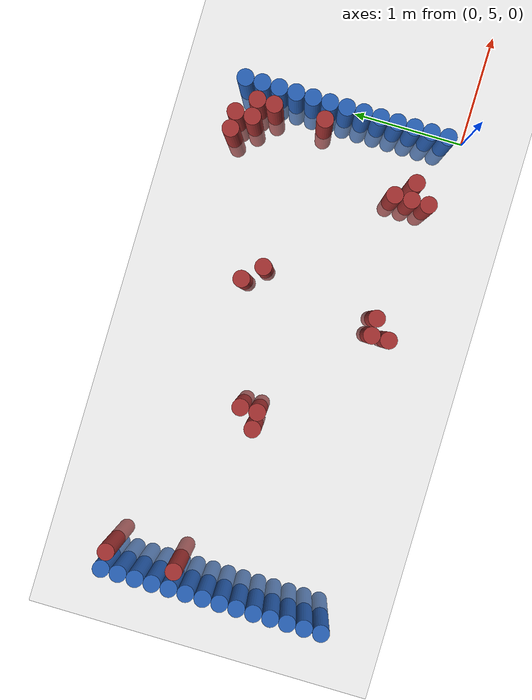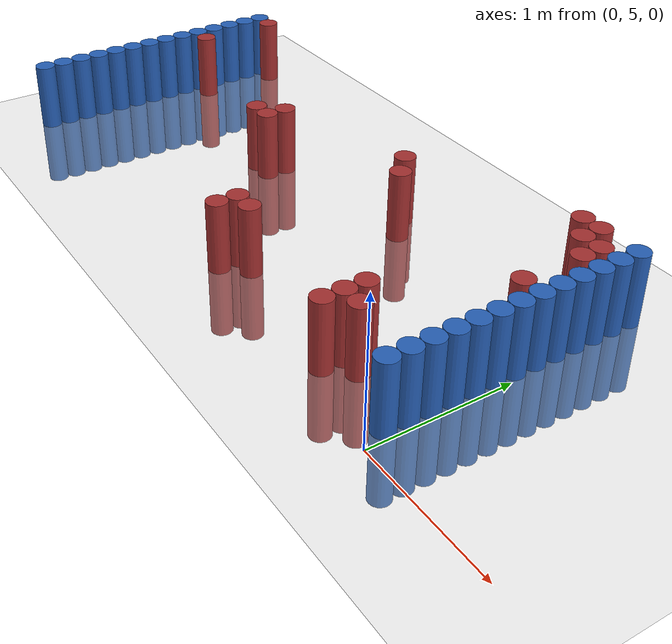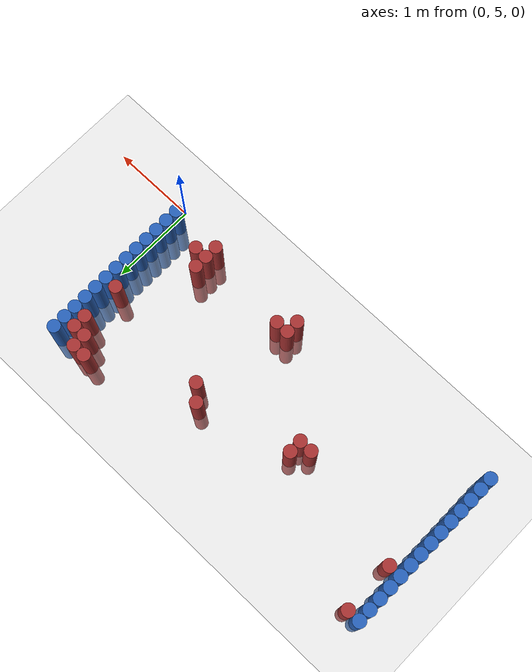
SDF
<sdf version="1.6">
 <world name="default">
  <model name="ground_plane">
   <static>1</static>
   <link name="link">
    <collision name="collision">
     <geometry><plane><normal>0 0 1</normal><size>100 100</size></plane></geometry>
     <surface><friction><ode><mu>100</mu><mu2>50</mu2></ode></friction></surface>
    </collision>
    <visual name="visual">
     <cast_shadows>0</cast_shadows>
     <geometry><plane><normal>0 0 1</normal><size>100 100</size></plane></geometry>
     <material>
      <script><uri>file://media/materials/scripts/gazebo.material</uri><name>Gazebo/Grey</name></script>
     </material>
    </visual>
   </link>
  </model>
  <model name="unit_cylinder_95">
   <static>1</static>
   <pose>-4.425000 5.025000 0.000000 0.000000 0.000000 0.000000</pose>
   <link name="link">
    <inertial>
     <mass>1</mass>
     <inertia><ixx>0.145833</ixx><ixy>0</ixy><ixz>0</ixz><iyy>0.145833</iyy><iyz>0</iyz><izz>0.125</izz></inertia>
    </inertial>
    <collision name="collision">
     <geometry><cylinder><radius>0.075000</radius><length>1</length></cylinder></geometry>
    </collision>
    <visual name="visual">
     <geometry><cylinder><radius>0.075000</radius><length>1</length></cylinder></geometry>
     <material>
      <ambient>0.152000 0.379000 0.720000 1</ambient>
      <diffuse>0.152000 0.379000 0.720000 1</diffuse>
     </material>
     <material>
      <script><name>Gazebo/Grey</name><uri>file://media/materials/scripts/gazebo.material</uri></script>
     </material>
    </visual>
   </link>
  </model>
  <model name="unit_cylinder_96">
   <static>1</static>
   <pose>-4.425000 5.175000 0.000000 0.000000 0.000000 0.000000</pose>
   <link name="link">
    <inertial>
     <mass>1</mass>
     <inertia><ixx>0.145833</ixx><ixy>0</ixy><ixz>0</ixz><iyy>0.145833</iyy><iyz>0</iyz><izz>0.125</izz></inertia>
    </inertial>
    <collision name="collision">
     <geometry><cylinder><radius>0.075000</radius><length>1</length></cylinder></geometry>
    </collision>
    <visual name="visual">
     <geometry><cylinder><radius>0.075000</radius><length>1</length></cylinder></geometry>
     <material>
      <ambient>0.152000 0.379000 0.720000 1</ambient>
      <diffuse>0.152000 0.379000 0.720000 1</diffuse>
     </material>
     <material>
      <script><name>Gazebo/Grey</name><uri>file://media/materials/scripts/gazebo.material</uri></script>
     </material>
    </visual>
   </link>
  </model>
  <model name="unit_cylinder_97">
   <static>1</static>
   <pose>-4.425000 5.325000 0.000000 0.000000 0.000000 0.000000</pose>
   <link name="link">
    <inertial>
     <mass>1</mass>
     <inertia><ixx>0.145833</ixx><ixy>0</ixy><ixz>0</ixz><iyy>0.145833</iyy><iyz>0</iyz><izz>0.125</izz></inertia>
    </inertial>
    <collision name="collision">
     <geometry><cylinder><radius>0.075000</radius><length>1</length></cylinder></geometry>
    </collision>
    <visual name="visual">
     <geometry><cylinder><radius>0.075000</radius><length>1</length></cylinder></geometry>
     <material>
      <ambient>0.152000 0.379000 0.720000 1</ambient>
      <diffuse>0.152000 0.379000 0.720000 1</diffuse>
     </material>
     <material>
      <script><name>Gazebo/Grey</name><uri>file://media/materials/scripts/gazebo.material</uri></script>
     </material>
    </visual>
   </link>
  </model>
  <model name="unit_cylinder_98">
   <static>1</static>
   <pose>-4.425000 5.475000 0.000000 0.000000 0.000000 0.000000</pose>
   <link name="link">
    <inertial>
     <mass>1</mass>
     <inertia><ixx>0.145833</ixx><ixy>0</ixy><ixz>0</ixz><iyy>0.145833</iyy><iyz>0</iyz><izz>0.125</izz></inertia>
    </inertial>
    <collision name="collision">
     <geometry><cylinder><radius>0.075000</radius><length>1</length></cylinder></geometry>
    </collision>
    <visual name="visual">
     <geometry><cylinder><radius>0.075000</radius><length>1</length></cylinder></geometry>
     <material>
      <ambient>0.152000 0.379000 0.720000 1</ambient>
      <diffuse>0.152000 0.379000 0.720000 1</diffuse>
     </material>
     <material>
      <script><name>Gazebo/Grey</name><uri>file://media/materials/scripts/gazebo.material</uri></script>
     </material>
    </visual>
   </link>
  </model>
  <model name="unit_cylinder_99">
   <static>1</static>
   <pose>-4.425000 5.625000 0.000000 0.000000 0.000000 0.000000</pose>
   <link name="link">
    <inertial>
     <mass>1</mass>
     <inertia><ixx>0.145833</ixx><ixy>0</ixy><ixz>0</ixz><iyy>0.145833</iyy><iyz>0</iyz><izz>0.125</izz></inertia>
    </inertial>
    <collision name="collision">
     <geometry><cylinder><radius>0.075000</radius><length>1</length></cylinder></geometry>
    </collision>
    <visual name="visual">
     <geometry><cylinder><radius>0.075000</radius><length>1</length></cylinder></geometry>
     <material>
      <ambient>0.152000 0.379000 0.720000 1</ambient>
      <diffuse>0.152000 0.379000 0.720000 1</diffuse>
     </material>
     <material>
      <script><name>Gazebo/Grey</name><uri>file://media/materials/scripts/gazebo.material</uri></script>
     </material>
    </visual>
   </link>
  </model>
  <model name="unit_cylinder_100">
   <static>1</static>
   <pose>-4.425000 5.775000 0.000000 0.000000 0.000000 0.000000</pose>
   <link name="link">
    <inertial>
     <mass>1</mass>
     <inertia><ixx>0.145833</ixx><ixy>0</ixy><ixz>0</ixz><iyy>0.145833</iyy><iyz>0</iyz><izz>0.125</izz></inertia>
    </inertial>
    <collision name="collision">
     <geometry><cylinder><radius>0.075000</radius><length>1</length></cylinder></geometry>
    </collision>
    <visual name="visual">
     <geometry><cylinder><radius>0.075000</radius><length>1</length></cylinder></geometry>
     <material>
      <ambient>0.152000 0.379000 0.720000 1</ambient>
      <diffuse>0.152000 0.379000 0.720000 1</diffuse>
     </material>
     <material>
      <script><name>Gazebo/Grey</name><uri>file://media/materials/scripts/gazebo.material</uri></script>
     </material>
    </visual>
   </link>
  </model>
  <model name="unit_cylinder_101">
   <static>1</static>
   <pose>-4.425000 5.925000 0.000000 0.000000 0.000000 0.000000</pose>
   <link name="link">
    <inertial>
     <mass>1</mass>
     <inertia><ixx>0.145833</ixx><ixy>0</ixy><ixz>0</ixz><iyy>0.145833</iyy><iyz>0</iyz><izz>0.125</izz></inertia>
    </inertial>
    <collision name="collision">
     <geometry><cylinder><radius>0.075000</radius><length>1</length></cylinder></geometry>
    </collision>
    <visual name="visual">
     <geometry><cylinder><radius>0.075000</radius><length>1</length></cylinder></geometry>
     <material>
      <ambient>0.152000 0.379000 0.720000 1</ambient>
      <diffuse>0.152000 0.379000 0.720000 1</diffuse>
     </material>
     <material>
      <script><name>Gazebo/Grey</name><uri>file://media/materials/scripts/gazebo.material</uri></script>
     </material>
    </visual>
   </link>
  </model>
  <model name="unit_cylinder_102">
   <static>1</static>
   <pose>-4.425000 6.075000 0.000000 0.000000 0.000000 0.000000</pose>
   <link name="link">
    <inertial>
     <mass>1</mass>
     <inertia><ixx>0.145833</ixx><ixy>0</ixy><ixz>0</ixz><iyy>0.145833</iyy><iyz>0</iyz><izz>0.125</izz></inertia>
    </inertial>
    <collision name="collision">
     <geometry><cylinder><radius>0.075000</radius><length>1</length></cylinder></geometry>
    </collision>
    <visual name="visual">
     <geometry><cylinder><radius>0.075000</radius><length>1</length></cylinder></geometry>
     <material>
      <ambient>0.152000 0.379000 0.720000 1</ambient>
      <diffuse>0.152000 0.379000 0.720000 1</diffuse>
     </material>
     <material>
      <script><name>Gazebo/Grey</name><uri>file://media/materials/scripts/gazebo.material</uri></script>
     </material>
    </visual>
   </link>
  </model>
  <model name="unit_cylinder_103">
   <static>1</static>
   <pose>-4.425000 6.225000 0.000000 0.000000 0.000000 0.000000</pose>
   <link name="link">
    <inertial>
     <mass>1</mass>
     <inertia><ixx>0.145833</ixx><ixy>0</ixy><ixz>0</ixz><iyy>0.145833</iyy><iyz>0</iyz><izz>0.125</izz></inertia>
    </inertial>
    <collision name="collision">
     <geometry><cylinder><radius>0.075000</radius><length>1</length></cylinder></geometry>
    </collision>
    <visual name="visual">
     <geometry><cylinder><radius>0.075000</radius><length>1</length></cylinder></geometry>
     <material>
      <ambient>0.152000 0.379000 0.720000 1</ambient>
      <diffuse>0.152000 0.379000 0.720000 1</diffuse>
     </material>
     <material>
      <script><name>Gazebo/Grey</name><uri>file://media/materials/scripts/gazebo.material</uri></script>
     </material>
    </visual>
   </link>
  </model>
  <model name="unit_cylinder_104">
   <static>1</static>
   <pose>-4.425000 6.375000 0.000000 0.000000 0.000000 0.000000</pose>
   <link name="link">
    <inertial>
     <mass>1</mass>
     <inertia><ixx>0.145833</ixx><ixy>0</ixy><ixz>0</ixz><iyy>0.145833</iyy><iyz>0</iyz><izz>0.125</izz></inertia>
    </inertial>
    <collision name="collision">
     <geometry><cylinder><radius>0.075000</radius><length>1</length></cylinder></geometry>
    </collision>
    <visual name="visual">
     <geometry><cylinder><radius>0.075000</radius><length>1</length></cylinder></geometry>
     <material>
      <ambient>0.152000 0.379000 0.720000 1</ambient>
      <diffuse>0.152000 0.379000 0.720000 1</diffuse>
     </material>
     <material>
      <script><name>Gazebo/Grey</name><uri>file://media/materials/scripts/gazebo.material</uri></script>
     </material>
    </visual>
   </link>
  </model>
  <model name="unit_cylinder_105">
   <static>1</static>
   <pose>-4.425000 6.525000 0.000000 0.000000 0.000000 0.000000</pose>
   <link name="link">
    <inertial>
     <mass>1</mass>
     <inertia><ixx>0.145833</ixx><ixy>0</ixy><ixz>0</ixz><iyy>0.145833</iyy><iyz>0</iyz><izz>0.125</izz></inertia>
    </inertial>
    <collision name="collision">
     <geometry><cylinder><radius>0.075000</radius><length>1</length></cylinder></geometry>
    </collision>
    <visual name="visual">
     <geometry><cylinder><radius>0.075000</radius><length>1</length></cylinder></geometry>
     <material>
      <ambient>0.152000 0.379000 0.720000 1</ambient>
      <diffuse>0.152000 0.379000 0.720000 1</diffuse>
     </material>
     <material>
      <script><name>Gazebo/Grey</name><uri>file://media/materials/scripts/gazebo.material</uri></script>
     </material>
    </visual>
   </link>
  </model>
  <model name="unit_cylinder_106">
   <static>1</static>
   <pose>-4.425000 6.675000 0.000000 0.000000 0.000000 0.000000</pose>
   <link name="link">
    <inertial>
     <mass>1</mass>
     <inertia><ixx>0.145833</ixx><ixy>0</ixy><ixz>0</ixz><iyy>0.145833</iyy><iyz>0</iyz><izz>0.125</izz></inertia>
    </inertial>
    <collision name="collision">
     <geometry><cylinder><radius>0.075000</radius><length>1</length></cylinder></geometry>
    </collision>
    <visual name="visual">
     <geometry><cylinder><radius>0.075000</radius><length>1</length></cylinder></geometry>
     <material>
      <ambient>0.152000 0.379000 0.720000 1</ambient>
      <diffuse>0.152000 0.379000 0.720000 1</diffuse>
     </material>
     <material>
      <script><name>Gazebo/Grey</name><uri>file://media/materials/scripts/gazebo.material</uri></script>
     </material>
    </visual>
   </link>
  </model>
  <model name="unit_cylinder_107">
   <static>1</static>
   <pose>-4.425000 6.825000 0.000000 0.000000 0.000000 0.000000</pose>
   <link name="link">
    <inertial>
     <mass>1</mass>
     <inertia><ixx>0.145833</ixx><ixy>0</ixy><ixz>0</ixz><iyy>0.145833</iyy><iyz>0</iyz><izz>0.125</izz></inertia>
    </inertial>
    <collision name="collision">
     <geometry><cylinder><radius>0.075000</radius><length>1</length></cylinder></geometry>
    </collision>
    <visual name="visual">
     <geometry><cylinder><radius>0.075000</radius><length>1</length></cylinder></geometry>
     <material>
      <ambient>0.152000 0.379000 0.720000 1</ambient>
      <diffuse>0.152000 0.379000 0.720000 1</diffuse>
     </material>
     <material>
      <script><name>Gazebo/Grey</name><uri>file://media/materials/scripts/gazebo.material</uri></script>
     </material>
    </visual>
   </link>
  </model>
  <model name="unit_cylinder_108">
   <static>1</static>
   <pose>-4.425000 6.975000 0.000000 0.000000 0.000000 0.000000</pose>
   <link name="link">
    <inertial>
     <mass>1</mass>
     <inertia><ixx>0.145833</ixx><ixy>0</ixy><ixz>0</ixz><iyy>0.145833</iyy><iyz>0</iyz><izz>0.125</izz></inertia>
    </inertial>
    <collision name="collision">
     <geometry><cylinder><radius>0.075000</radius><length>1</length></cylinder></geometry>
    </collision>
    <visual name="visual">
     <geometry><cylinder><radius>0.075000</radius><length>1</length></cylinder></geometry>
     <material>
      <ambient>0.152000 0.379000 0.720000 1</ambient>
      <diffuse>0.152000 0.379000 0.720000 1</diffuse>
     </material>
     <material>
      <script><name>Gazebo/Grey</name><uri>file://media/materials/scripts/gazebo.material</uri></script>
     </material>
    </visual>
   </link>
  </model>
  <model name="unit_cylinder_126">
   <static>1</static>
   <pose>-4.275000 6.375000 0.000000 0.000000 0.000000 0.000000</pose>
   <link name="link">
    <inertial>
     <mass>1</mass>
     <inertia><ixx>0.145833</ixx><ixy>0</ixy><ixz>0</ixz><iyy>0.145833</iyy><iyz>0</iyz><izz>0.125</izz></inertia>
    </inertial>
    <collision name="collision">
     <geometry><cylinder><radius>0.075000</radius><length>1</length></cylinder></geometry>
    </collision>
    <visual name="visual">
     <geometry><cylinder><radius>0.075000</radius><length>1</length></cylinder></geometry>
     <material>
      <ambient>0.648000 0.192000 0.192000 1</ambient>
      <diffuse>0.648000 0.192000 0.192000 1</diffuse>
     </material>
     <material>
      <script><name>Gazebo/Grey</name><uri>file://media/materials/scripts/gazebo.material</uri></script>
     </material>
    </visual>
   </link>
  </model>
  <model name="unit_cylinder_127">
   <static>1</static>
   <pose>-4.275000 6.975000 0.000000 0.000000 0.000000 0.000000</pose>
   <link name="link">
    <inertial>
     <mass>1</mass>
     <inertia><ixx>0.145833</ixx><ixy>0</ixy><ixz>0</ixz><iyy>0.145833</iyy><iyz>0</iyz><izz>0.125</izz></inertia>
    </inertial>
    <collision name="collision">
     <geometry><cylinder><radius>0.075000</radius><length>1</length></cylinder></geometry>
    </collision>
    <visual name="visual">
     <geometry><cylinder><radius>0.075000</radius><length>1</length></cylinder></geometry>
     <material>
      <ambient>0.648000 0.192000 0.192000 1</ambient>
      <diffuse>0.648000 0.192000 0.192000 1</diffuse>
     </material>
     <material>
      <script><name>Gazebo/Grey</name><uri>file://media/materials/scripts/gazebo.material</uri></script>
     </material>
    </visual>
   </link>
  </model>
  <model name="unit_cylinder_148">
   <static>1</static>
   <pose>-2.925000 6.075000 0.000000 0.000000 0.000000 0.000000</pose>
   <link name="link">
    <inertial>
     <mass>1</mass>
     <inertia><ixx>0.145833</ixx><ixy>0</ixy><ixz>0</ixz><iyy>0.145833</iyy><iyz>0</iyz><izz>0.125</izz></inertia>
    </inertial>
    <collision name="collision">
     <geometry><cylinder><radius>0.075000</radius><length>1</length></cylinder></geometry>
    </collision>
    <visual name="visual">
     <geometry><cylinder><radius>0.075000</radius><length>1</length></cylinder></geometry>
     <material>
      <ambient>0.648000 0.192000 0.192000 1</ambient>
      <diffuse>0.648000 0.192000 0.192000 1</diffuse>
     </material>
     <material>
      <script><name>Gazebo/Grey</name><uri>file://media/materials/scripts/gazebo.material</uri></script>
     </material>
    </visual>
   </link>
  </model>
  <model name="unit_cylinder_149">
   <static>1</static>
   <pose>-2.775000 6.075000 0.000000 0.000000 0.000000 0.000000</pose>
   <link name="link">
    <inertial>
     <mass>1</mass>
     <inertia><ixx>0.145833</ixx><ixy>0</ixy><ixz>0</ixz><iyy>0.145833</iyy><iyz>0</iyz><izz>0.125</izz></inertia>
    </inertial>
    <collision name="collision">
     <geometry><cylinder><radius>0.075000</radius><length>1</length></cylinder></geometry>
    </collision>
    <visual name="visual">
     <geometry><cylinder><radius>0.075000</radius><length>1</length></cylinder></geometry>
     <material>
      <ambient>0.648000 0.192000 0.192000 1</ambient>
      <diffuse>0.648000 0.192000 0.192000 1</diffuse>
     </material>
     <material>
      <script><name>Gazebo/Grey</name><uri>file://media/materials/scripts/gazebo.material</uri></script>
     </material>
    </visual>
   </link>
  </model>
  <model name="unit_cylinder_150">
   <static>1</static>
   <pose>-2.775000 6.225000 0.000000 0.000000 0.000000 0.000000</pose>
   <link name="link">
    <inertial>
     <mass>1</mass>
     <inertia><ixx>0.145833</ixx><ixy>0</ixy><ixz>0</ixz><iyy>0.145833</iyy><iyz>0</iyz><izz>0.125</izz></inertia>
    </inertial>
    <collision name="collision">
     <geometry><cylinder><radius>0.075000</radius><length>1</length></cylinder></geometry>
    </collision>
    <visual name="visual">
     <geometry><cylinder><radius>0.075000</radius><length>1</length></cylinder></geometry>
     <material>
      <ambient>0.648000 0.192000 0.192000 1</ambient>
      <diffuse>0.648000 0.192000 0.192000 1</diffuse>
     </material>
     <material>
      <script><name>Gazebo/Grey</name><uri>file://media/materials/scripts/gazebo.material</uri></script>
     </material>
    </visual>
   </link>
  </model>
  <model name="unit_cylinder_158">
   <static>1</static>
   <pose>-1.875000 5.175000 0.000000 0.000000 0.000000 0.000000</pose>
   <link name="link">
    <inertial>
     <mass>1</mass>
     <inertia><ixx>0.145833</ixx><ixy>0</ixy><ixz>0</ixz><iyy>0.145833</iyy><iyz>0</iyz><izz>0.125</izz></inertia>
    </inertial>
    <collision name="collision">
     <geometry><cylinder><radius>0.075000</radius><length>1</length></cylinder></geometry>
    </collision>
    <visual name="visual">
     <geometry><cylinder><radius>0.075000</radius><length>1</length></cylinder></geometry>
     <material>
      <ambient>0.648000 0.192000 0.192000 1</ambient>
      <diffuse>0.648000 0.192000 0.192000 1</diffuse>
     </material>
     <material>
      <script><name>Gazebo/Grey</name><uri>file://media/materials/scripts/gazebo.material</uri></script>
     </material>
    </visual>
   </link>
  </model>
  <model name="unit_cylinder_159">
   <static>1</static>
   <pose>-1.875000 5.325000 0.000000 0.000000 0.000000 0.000000</pose>
   <link name="link">
    <inertial>
     <mass>1</mass>
     <inertia><ixx>0.145833</ixx><ixy>0</ixy><ixz>0</ixz><iyy>0.145833</iyy><iyz>0</iyz><izz>0.125</izz></inertia>
    </inertial>
    <collision name="collision">
     <geometry><cylinder><radius>0.075000</radius><length>1</length></cylinder></geometry>
    </collision>
    <visual name="visual">
     <geometry><cylinder><radius>0.075000</radius><length>1</length></cylinder></geometry>
     <material>
      <ambient>0.648000 0.192000 0.192000 1</ambient>
      <diffuse>0.648000 0.192000 0.192000 1</diffuse>
     </material>
     <material>
      <script><name>Gazebo/Grey</name><uri>file://media/materials/scripts/gazebo.material</uri></script>
     </material>
    </visual>
   </link>
  </model>
  <model name="unit_cylinder_163">
   <static>1</static>
   <pose>-1.725000 5.325000 0.000000 0.000000 0.000000 0.000000</pose>
   <link name="link">
    <inertial>
     <mass>1</mass>
     <inertia><ixx>0.145833</ixx><ixy>0</ixy><ixz>0</ixz><iyy>0.145833</iyy><iyz>0</iyz><izz>0.125</izz></inertia>
    </inertial>
    <collision name="collision">
     <geometry><cylinder><radius>0.075000</radius><length>1</length></cylinder></geometry>
    </collision>
    <visual name="visual">
     <geometry><cylinder><radius>0.075000</radius><length>1</length></cylinder></geometry>
     <material>
      <ambient>0.648000 0.192000 0.192000 1</ambient>
      <diffuse>0.648000 0.192000 0.192000 1</diffuse>
     </material>
     <material>
      <script><name>Gazebo/Grey</name><uri>file://media/materials/scripts/gazebo.material</uri></script>
     </material>
    </visual>
   </link>
  </model>
  <model name="unit_cylinder_164">
   <static>1</static>
   <pose>-1.725000 6.525000 0.000000 0.000000 0.000000 0.000000</pose>
   <link name="link">
    <inertial>
     <mass>1</mass>
     <inertia><ixx>0.145833</ixx><ixy>0</ixy><ixz>0</ixz><iyy>0.145833</iyy><iyz>0</iyz><izz>0.125</izz></inertia>
    </inertial>
    <collision name="collision">
     <geometry><cylinder><radius>0.075000</radius><length>1</length></cylinder></geometry>
    </collision>
    <visual name="visual">
     <geometry><cylinder><radius>0.075000</radius><length>1</length></cylinder></geometry>
     <material>
      <ambient>0.648000 0.192000 0.192000 1</ambient>
      <diffuse>0.648000 0.192000 0.192000 1</diffuse>
     </material>
     <material>
      <script><name>Gazebo/Grey</name><uri>file://media/materials/scripts/gazebo.material</uri></script>
     </material>
    </visual>
   </link>
  </model>
  <model name="unit_cylinder_167">
   <static>1</static>
   <pose>-1.575000 6.375000 0.000000 0.000000 0.000000 0.000000</pose>
   <link name="link">
    <inertial>
     <mass>1</mass>
     <inertia><ixx>0.145833</ixx><ixy>0</ixy><ixz>0</ixz><iyy>0.145833</iyy><iyz>0</iyz><izz>0.125</izz></inertia>
    </inertial>
    <collision name="collision">
     <geometry><cylinder><radius>0.075000</radius><length>1</length></cylinder></geometry>
    </collision>
    <visual name="visual">
     <geometry><cylinder><radius>0.075000</radius><length>1</length></cylinder></geometry>
     <material>
      <ambient>0.648000 0.192000 0.192000 1</ambient>
      <diffuse>0.648000 0.192000 0.192000 1</diffuse>
     </material>
     <material>
      <script><name>Gazebo/Grey</name><uri>file://media/materials/scripts/gazebo.material</uri></script>
     </material>
    </visual>
   </link>
  </model>
  <model name="unit_cylinder_176">
   <static>1</static>
   <pose>-0.675000 5.175000 0.000000 0.000000 0.000000 0.000000</pose>
   <link name="link">
    <inertial>
     <mass>1</mass>
     <inertia><ixx>0.145833</ixx><ixy>0</ixy><ixz>0</ixz><iyy>0.145833</iyy><iyz>0</iyz><izz>0.125</izz></inertia>
    </inertial>
    <collision name="collision">
     <geometry><cylinder><radius>0.075000</radius><length>1</length></cylinder></geometry>
    </collision>
    <visual name="visual">
     <geometry><cylinder><radius>0.075000</radius><length>1</length></cylinder></geometry>
     <material>
      <ambient>0.648000 0.192000 0.192000 1</ambient>
      <diffuse>0.648000 0.192000 0.192000 1</diffuse>
     </material>
     <material>
      <script><name>Gazebo/Grey</name><uri>file://media/materials/scripts/gazebo.material</uri></script>
     </material>
    </visual>
   </link>
  </model>
  <model name="unit_cylinder_177">
   <static>1</static>
   <pose>-0.675000 5.325000 0.000000 0.000000 0.000000 0.000000</pose>
   <link name="link">
    <inertial>
     <mass>1</mass>
     <inertia><ixx>0.145833</ixx><ixy>0</ixy><ixz>0</ixz><iyy>0.145833</iyy><iyz>0</iyz><izz>0.125</izz></inertia>
    </inertial>
    <collision name="collision">
     <geometry><cylinder><radius>0.075000</radius><length>1</length></cylinder></geometry>
    </collision>
    <visual name="visual">
     <geometry><cylinder><radius>0.075000</radius><length>1</length></cylinder></geometry>
     <material>
      <ambient>0.648000 0.192000 0.192000 1</ambient>
      <diffuse>0.648000 0.192000 0.192000 1</diffuse>
     </material>
     <material>
      <script><name>Gazebo/Grey</name><uri>file://media/materials/scripts/gazebo.material</uri></script>
     </material>
    </visual>
   </link>
  </model>
  <model name="unit_cylinder_178">
   <static>1</static>
   <pose>-0.675000 5.475000 0.000000 0.000000 0.000000 0.000000</pose>
   <link name="link">
    <inertial>
     <mass>1</mass>
     <inertia><ixx>0.145833</ixx><ixy>0</ixy><ixz>0</ixz><iyy>0.145833</iyy><iyz>0</iyz><izz>0.125</izz></inertia>
    </inertial>
    <collision name="collision">
     <geometry><cylinder><radius>0.075000</radius><length>1</length></cylinder></geometry>
    </collision>
    <visual name="visual">
     <geometry><cylinder><radius>0.075000</radius><length>1</length></cylinder></geometry>
     <material>
      <ambient>0.648000 0.192000 0.192000 1</ambient>
      <diffuse>0.648000 0.192000 0.192000 1</diffuse>
     </material>
     <material>
      <script><name>Gazebo/Grey</name><uri>file://media/materials/scripts/gazebo.material</uri></script>
     </material>
    </visual>
   </link>
  </model>
  <model name="unit_cylinder_179">
   <static>1</static>
   <pose>-0.525000 5.325000 0.000000 0.000000 0.000000 0.000000</pose>
   <link name="link">
    <inertial>
     <mass>1</mass>
     <inertia><ixx>0.145833</ixx><ixy>0</ixy><ixz>0</ixz><iyy>0.145833</iyy><iyz>0</iyz><izz>0.125</izz></inertia>
    </inertial>
    <collision name="collision">
     <geometry><cylinder><radius>0.075000</radius><length>1</length></cylinder></geometry>
    </collision>
    <visual name="visual">
     <geometry><cylinder><radius>0.075000</radius><length>1</length></cylinder></geometry>
     <material>
      <ambient>0.648000 0.192000 0.192000 1</ambient>
      <diffuse>0.648000 0.192000 0.192000 1</diffuse>
     </material>
     <material>
      <script><name>Gazebo/Grey</name><uri>file://media/materials/scripts/gazebo.material</uri></script>
     </material>
    </visual>
   </link>
  </model>
  <model name="unit_cylinder_180">
   <static>1</static>
   <pose>-0.525000 6.975000 0.000000 0.000000 0.000000 0.000000</pose>
   <link name="link">
    <inertial>
     <mass>1</mass>
     <inertia><ixx>0.145833</ixx><ixy>0</ixy><ixz>0</ixz><iyy>0.145833</iyy><iyz>0</iyz><izz>0.125</izz></inertia>
    </inertial>
    <collision name="collision">
     <geometry><cylinder><radius>0.075000</radius><length>1</length></cylinder></geometry>
    </collision>
    <visual name="visual">
     <geometry><cylinder><radius>0.075000</radius><length>1</length></cylinder></geometry>
     <material>
      <ambient>0.648000 0.192000 0.192000 1</ambient>
      <diffuse>0.648000 0.192000 0.192000 1</diffuse>
     </material>
     <material>
      <script><name>Gazebo/Grey</name><uri>file://media/materials/scripts/gazebo.material</uri></script>
     </material>
    </visual>
   </link>
  </model>
  <model name="unit_cylinder_185">
   <static>1</static>
   <pose>-0.375000 6.825000 0.000000 0.000000 0.000000 0.000000</pose>
   <link name="link">
    <inertial>
     <mass>1</mass>
     <inertia><ixx>0.145833</ixx><ixy>0</ixy><ixz>0</ixz><iyy>0.145833</iyy><iyz>0</iyz><izz>0.125</izz></inertia>
    </inertial>
    <collision name="collision">
     <geometry><cylinder><radius>0.075000</radius><length>1</length></cylinder></geometry>
    </collision>
    <visual name="visual">
     <geometry><cylinder><radius>0.075000</radius><length>1</length></cylinder></geometry>
     <material>
      <ambient>0.648000 0.192000 0.192000 1</ambient>
      <diffuse>0.648000 0.192000 0.192000 1</diffuse>
     </material>
     <material>
      <script><name>Gazebo/Grey</name><uri>file://media/materials/scripts/gazebo.material</uri></script>
     </material>
    </visual>
   </link>
  </model>
  <model name="unit_cylinder_186">
   <static>1</static>
   <pose>-0.375000 6.975000 0.000000 0.000000 0.000000 0.000000</pose>
   <link name="link">
    <inertial>
     <mass>1</mass>
     <inertia><ixx>0.145833</ixx><ixy>0</ixy><ixz>0</ixz><iyy>0.145833</iyy><iyz>0</iyz><izz>0.125</izz></inertia>
    </inertial>
    <collision name="collision">
     <geometry><cylinder><radius>0.075000</radius><length>1</length></cylinder></geometry>
    </collision>
    <visual name="visual">
     <geometry><cylinder><radius>0.075000</radius><length>1</length></cylinder></geometry>
     <material>
      <ambient>0.648000 0.192000 0.192000 1</ambient>
      <diffuse>0.648000 0.192000 0.192000 1</diffuse>
     </material>
     <material>
      <script><name>Gazebo/Grey</name><uri>file://media/materials/scripts/gazebo.material</uri></script>
     </material>
    </visual>
   </link>
  </model>
  <model name="unit_cylinder_191">
   <static>1</static>
   <pose>-0.225000 6.225000 0.000000 0.000000 0.000000 0.000000</pose>
   <link name="link">
    <inertial>
     <mass>1</mass>
     <inertia><ixx>0.145833</ixx><ixy>0</ixy><ixz>0</ixz><iyy>0.145833</iyy><iyz>0</iyz><izz>0.125</izz></inertia>
    </inertial>
    <collision name="collision">
     <geometry><cylinder><radius>0.075000</radius><length>1</length></cylinder></geometry>
    </collision>
    <visual name="visual">
     <geometry><cylinder><radius>0.075000</radius><length>1</length></cylinder></geometry>
     <material>
      <ambient>0.648000 0.192000 0.192000 1</ambient>
      <diffuse>0.648000 0.192000 0.192000 1</diffuse>
     </material>
     <material>
      <script><name>Gazebo/Grey</name><uri>file://media/materials/scripts/gazebo.material</uri></script>
     </material>
    </visual>
   </link>
  </model>
  <model name="unit_cylinder_192">
   <static>1</static>
   <pose>-0.225000 6.675000 0.000000 0.000000 0.000000 0.000000</pose>
   <link name="link">
    <inertial>
     <mass>1</mass>
     <inertia><ixx>0.145833</ixx><ixy>0</ixy><ixz>0</ixz><iyy>0.145833</iyy><iyz>0</iyz><izz>0.125</izz></inertia>
    </inertial>
    <collision name="collision">
     <geometry><cylinder><radius>0.075000</radius><length>1</length></cylinder></geometry>
    </collision>
    <visual name="visual">
     <geometry><cylinder><radius>0.075000</radius><length>1</length></cylinder></geometry>
     <material>
      <ambient>0.648000 0.192000 0.192000 1</ambient>
      <diffuse>0.648000 0.192000 0.192000 1</diffuse>
     </material>
     <material>
      <script><name>Gazebo/Grey</name><uri>file://media/materials/scripts/gazebo.material</uri></script>
     </material>
    </visual>
   </link>
  </model>
  <model name="unit_cylinder_193">
   <static>1</static>
   <pose>-0.225000 6.825000 0.000000 0.000000 0.000000 0.000000</pose>
   <link name="link">
    <inertial>
     <mass>1</mass>
     <inertia><ixx>0.145833</ixx><ixy>0</ixy><ixz>0</ixz><iyy>0.145833</iyy><iyz>0</iyz><izz>0.125</izz></inertia>
    </inertial>
    <collision name="collision">
     <geometry><cylinder><radius>0.075000</radius><length>1</length></cylinder></geometry>
    </collision>
    <visual name="visual">
     <geometry><cylinder><radius>0.075000</radius><length>1</length></cylinder></geometry>
     <material>
      <ambient>0.648000 0.192000 0.192000 1</ambient>
      <diffuse>0.648000 0.192000 0.192000 1</diffuse>
     </material>
     <material>
      <script><name>Gazebo/Grey</name><uri>file://media/materials/scripts/gazebo.material</uri></script>
     </material>
    </visual>
   </link>
  </model>
  <model name="unit_cylinder_207">
   <static>1</static>
   <pose>-0.075000 5.175000 0.000000 0.000000 0.000000 0.000000</pose>
   <link name="link">
    <inertial>
     <mass>1</mass>
     <inertia><ixx>0.145833</ixx><ixy>0</ixy><ixz>0</ixz><iyy>0.145833</iyy><iyz>0</iyz><izz>0.125</izz></inertia>
    </inertial>
    <collision name="collision">
     <geometry><cylinder><radius>0.075000</radius><length>1</length></cylinder></geometry>
    </collision>
    <visual name="visual">
     <geometry><cylinder><radius>0.075000</radius><length>1</length></cylinder></geometry>
     <material>
      <ambient>0.152000 0.379000 0.720000 1</ambient>
      <diffuse>0.152000 0.379000 0.720000 1</diffuse>
     </material>
     <material>
      <script><name>Gazebo/Grey</name><uri>file://media/materials/scripts/gazebo.material</uri></script>
     </material>
    </visual>
   </link>
  </model>
  <model name="unit_cylinder_208">
   <static>1</static>
   <pose>-0.075000 5.325000 0.000000 0.000000 0.000000 0.000000</pose>
   <link name="link">
    <inertial>
     <mass>1</mass>
     <inertia><ixx>0.145833</ixx><ixy>0</ixy><ixz>0</ixz><iyy>0.145833</iyy><iyz>0</iyz><izz>0.125</izz></inertia>
    </inertial>
    <collision name="collision">
     <geometry><cylinder><radius>0.075000</radius><length>1</length></cylinder></geometry>
    </collision>
    <visual name="visual">
     <geometry><cylinder><radius>0.075000</radius><length>1</length></cylinder></geometry>
     <material>
      <ambient>0.152000 0.379000 0.720000 1</ambient>
      <diffuse>0.152000 0.379000 0.720000 1</diffuse>
     </material>
     <material>
      <script><name>Gazebo/Grey</name><uri>file://media/materials/scripts/gazebo.material</uri></script>
     </material>
    </visual>
   </link>
  </model>
  <model name="unit_cylinder_209">
   <static>1</static>
   <pose>-0.075000 5.475000 0.000000 0.000000 0.000000 0.000000</pose>
   <link name="link">
    <inertial>
     <mass>1</mass>
     <inertia><ixx>0.145833</ixx><ixy>0</ixy><ixz>0</ixz><iyy>0.145833</iyy><iyz>0</iyz><izz>0.125</izz></inertia>
    </inertial>
    <collision name="collision">
     <geometry><cylinder><radius>0.075000</radius><length>1</length></cylinder></geometry>
    </collision>
    <visual name="visual">
     <geometry><cylinder><radius>0.075000</radius><length>1</length></cylinder></geometry>
     <material>
      <ambient>0.152000 0.379000 0.720000 1</ambient>
      <diffuse>0.152000 0.379000 0.720000 1</diffuse>
     </material>
     <material>
      <script><name>Gazebo/Grey</name><uri>file://media/materials/scripts/gazebo.material</uri></script>
     </material>
    </visual>
   </link>
  </model>
  <model name="unit_cylinder_210">
   <static>1</static>
   <pose>-0.075000 5.625000 0.000000 0.000000 0.000000 0.000000</pose>
   <link name="link">
    <inertial>
     <mass>1</mass>
     <inertia><ixx>0.145833</ixx><ixy>0</ixy><ixz>0</ixz><iyy>0.145833</iyy><iyz>0</iyz><izz>0.125</izz></inertia>
    </inertial>
    <collision name="collision">
     <geometry><cylinder><radius>0.075000</radius><length>1</length></cylinder></geometry>
    </collision>
    <visual name="visual">
     <geometry><cylinder><radius>0.075000</radius><length>1</length></cylinder></geometry>
     <material>
      <ambient>0.152000 0.379000 0.720000 1</ambient>
      <diffuse>0.152000 0.379000 0.720000 1</diffuse>
     </material>
     <material>
      <script><name>Gazebo/Grey</name><uri>file://media/materials/scripts/gazebo.material</uri></script>
     </material>
    </visual>
   </link>
  </model>
  <model name="unit_cylinder_211">
   <static>1</static>
   <pose>-0.075000 5.775000 0.000000 0.000000 0.000000 0.000000</pose>
   <link name="link">
    <inertial>
     <mass>1</mass>
     <inertia><ixx>0.145833</ixx><ixy>0</ixy><ixz>0</ixz><iyy>0.145833</iyy><iyz>0</iyz><izz>0.125</izz></inertia>
    </inertial>
    <collision name="collision">
     <geometry><cylinder><radius>0.075000</radius><length>1</length></cylinder></geometry>
    </collision>
    <visual name="visual">
     <geometry><cylinder><radius>0.075000</radius><length>1</length></cylinder></geometry>
     <material>
      <ambient>0.152000 0.379000 0.720000 1</ambient>
      <diffuse>0.152000 0.379000 0.720000 1</diffuse>
     </material>
     <material>
      <script><name>Gazebo/Grey</name><uri>file://media/materials/scripts/gazebo.material</uri></script>
     </material>
    </visual>
   </link>
  </model>
  <model name="unit_cylinder_212">
   <static>1</static>
   <pose>-0.075000 5.925000 0.000000 0.000000 0.000000 0.000000</pose>
   <link name="link">
    <inertial>
     <mass>1</mass>
     <inertia><ixx>0.145833</ixx><ixy>0</ixy><ixz>0</ixz><iyy>0.145833</iyy><iyz>0</iyz><izz>0.125</izz></inertia>
    </inertial>
    <collision name="collision">
     <geometry><cylinder><radius>0.075000</radius><length>1</length></cylinder></geometry>
    </collision>
    <visual name="visual">
     <geometry><cylinder><radius>0.075000</radius><length>1</length></cylinder></geometry>
     <material>
      <ambient>0.152000 0.379000 0.720000 1</ambient>
      <diffuse>0.152000 0.379000 0.720000 1</diffuse>
     </material>
     <material>
      <script><name>Gazebo/Grey</name><uri>file://media/materials/scripts/gazebo.material</uri></script>
     </material>
    </visual>
   </link>
  </model>
  <model name="unit_cylinder_213">
   <static>1</static>
   <pose>-0.075000 6.075000 0.000000 0.000000 0.000000 0.000000</pose>
   <link name="link">
    <inertial>
     <mass>1</mass>
     <inertia><ixx>0.145833</ixx><ixy>0</ixy><ixz>0</ixz><iyy>0.145833</iyy><iyz>0</iyz><izz>0.125</izz></inertia>
    </inertial>
    <collision name="collision">
     <geometry><cylinder><radius>0.075000</radius><length>1</length></cylinder></geometry>
    </collision>
    <visual name="visual">
     <geometry><cylinder><radius>0.075000</radius><length>1</length></cylinder></geometry>
     <material>
      <ambient>0.152000 0.379000 0.720000 1</ambient>
      <diffuse>0.152000 0.379000 0.720000 1</diffuse>
     </material>
     <material>
      <script><name>Gazebo/Grey</name><uri>file://media/materials/scripts/gazebo.material</uri></script>
     </material>
    </visual>
   </link>
  </model>
  <model name="unit_cylinder_214">
   <static>1</static>
   <pose>-0.075000 6.225000 0.000000 0.000000 0.000000 0.000000</pose>
   <link name="link">
    <inertial>
     <mass>1</mass>
     <inertia><ixx>0.145833</ixx><ixy>0</ixy><ixz>0</ixz><iyy>0.145833</iyy><iyz>0</iyz><izz>0.125</izz></inertia>
    </inertial>
    <collision name="collision">
     <geometry><cylinder><radius>0.075000</radius><length>1</length></cylinder></geometry>
    </collision>
    <visual name="visual">
     <geometry><cylinder><radius>0.075000</radius><length>1</length></cylinder></geometry>
     <material>
      <ambient>0.152000 0.379000 0.720000 1</ambient>
      <diffuse>0.152000 0.379000 0.720000 1</diffuse>
     </material>
     <material>
      <script><name>Gazebo/Grey</name><uri>file://media/materials/scripts/gazebo.material</uri></script>
     </material>
    </visual>
   </link>
  </model>
  <model name="unit_cylinder_215">
   <static>1</static>
   <pose>-0.075000 6.375000 0.000000 0.000000 0.000000 0.000000</pose>
   <link name="link">
    <inertial>
     <mass>1</mass>
     <inertia><ixx>0.145833</ixx><ixy>0</ixy><ixz>0</ixz><iyy>0.145833</iyy><iyz>0</iyz><izz>0.125</izz></inertia>
    </inertial>
    <collision name="collision">
     <geometry><cylinder><radius>0.075000</radius><length>1</length></cylinder></geometry>
    </collision>
    <visual name="visual">
     <geometry><cylinder><radius>0.075000</radius><length>1</length></cylinder></geometry>
     <material>
      <ambient>0.152000 0.379000 0.720000 1</ambient>
      <diffuse>0.152000 0.379000 0.720000 1</diffuse>
     </material>
     <material>
      <script><name>Gazebo/Grey</name><uri>file://media/materials/scripts/gazebo.material</uri></script>
     </material>
    </visual>
   </link>
  </model>
  <model name="unit_cylinder_216">
   <static>1</static>
   <pose>-0.075000 6.525000 0.000000 0.000000 0.000000 0.000000</pose>
   <link name="link">
    <inertial>
     <mass>1</mass>
     <inertia><ixx>0.145833</ixx><ixy>0</ixy><ixz>0</ixz><iyy>0.145833</iyy><iyz>0</iyz><izz>0.125</izz></inertia>
    </inertial>
    <collision name="collision">
     <geometry><cylinder><radius>0.075000</radius><length>1</length></cylinder></geometry>
    </collision>
    <visual name="visual">
     <geometry><cylinder><radius>0.075000</radius><length>1</length></cylinder></geometry>
     <material>
      <ambient>0.152000 0.379000 0.720000 1</ambient>
      <diffuse>0.152000 0.379000 0.720000 1</diffuse>
     </material>
     <material>
      <script><name>Gazebo/Grey</name><uri>file://media/materials/scripts/gazebo.material</uri></script>
     </material>
    </visual>
   </link>
  </model>
  <model name="unit_cylinder_217">
   <static>1</static>
   <pose>-0.075000 6.675000 0.000000 0.000000 0.000000 0.000000</pose>
   <link name="link">
    <inertial>
     <mass>1</mass>
     <inertia><ixx>0.145833</ixx><ixy>0</ixy><ixz>0</ixz><iyy>0.145833</iyy><iyz>0</iyz><izz>0.125</izz></inertia>
    </inertial>
    <collision name="collision">
     <geometry><cylinder><radius>0.075000</radius><length>1</length></cylinder></geometry>
    </collision>
    <visual name="visual">
     <geometry><cylinder><radius>0.075000</radius><length>1</length></cylinder></geometry>
     <material>
      <ambient>0.152000 0.379000 0.720000 1</ambient>
      <diffuse>0.152000 0.379000 0.720000 1</diffuse>
     </material>
     <material>
      <script><name>Gazebo/Grey</name><uri>file://media/materials/scripts/gazebo.material</uri></script>
     </material>
    </visual>
   </link>
  </model>
  <model name="unit_cylinder_218">
   <static>1</static>
   <pose>-0.075000 6.825000 0.000000 0.000000 0.000000 0.000000</pose>
   <link name="link">
    <inertial>
     <mass>1</mass>
     <inertia><ixx>0.145833</ixx><ixy>0</ixy><ixz>0</ixz><iyy>0.145833</iyy><iyz>0</iyz><izz>0.125</izz></inertia>
    </inertial>
    <collision name="collision">
     <geometry><cylinder><radius>0.075000</radius><length>1</length></cylinder></geometry>
    </collision>
    <visual name="visual">
     <geometry><cylinder><radius>0.075000</radius><length>1</length></cylinder></geometry>
     <material>
      <ambient>0.152000 0.379000 0.720000 1</ambient>
      <diffuse>0.152000 0.379000 0.720000 1</diffuse>
     </material>
     <material>
      <script><name>Gazebo/Grey</name><uri>file://media/materials/scripts/gazebo.material</uri></script>
     </material>
    </visual>
   </link>
  </model>
  <model name="unit_cylinder_219">
   <static>1</static>
   <pose>-0.075000 6.975000 0.000000 0.000000 0.000000 0.000000</pose>
   <link name="link">
    <inertial>
     <mass>1</mass>
     <inertia><ixx>0.145833</ixx><ixy>0</ixy><ixz>0</ixz><iyy>0.145833</iyy><iyz>0</iyz><izz>0.125</izz></inertia>
    </inertial>
    <collision name="collision">
     <geometry><cylinder><radius>0.075000</radius><length>1</length></cylinder></geometry>
    </collision>
    <visual name="visual">
     <geometry><cylinder><radius>0.075000</radius><length>1</length></cylinder></geometry>
     <material>
      <ambient>0.152000 0.379000 0.720000 1</ambient>
      <diffuse>0.152000 0.379000 0.720000 1</diffuse>
     </material>
     <material>
      <script><name>Gazebo/Grey</name><uri>file://media/materials/scripts/gazebo.material</uri></script>
     </material>
    </visual>
   </link>
  </model>
 </world>
</sdf>
